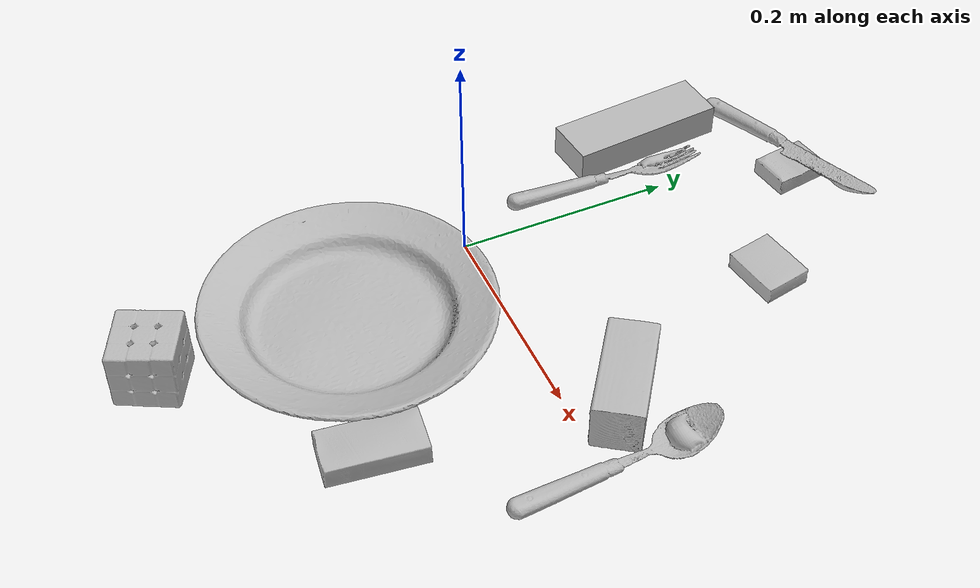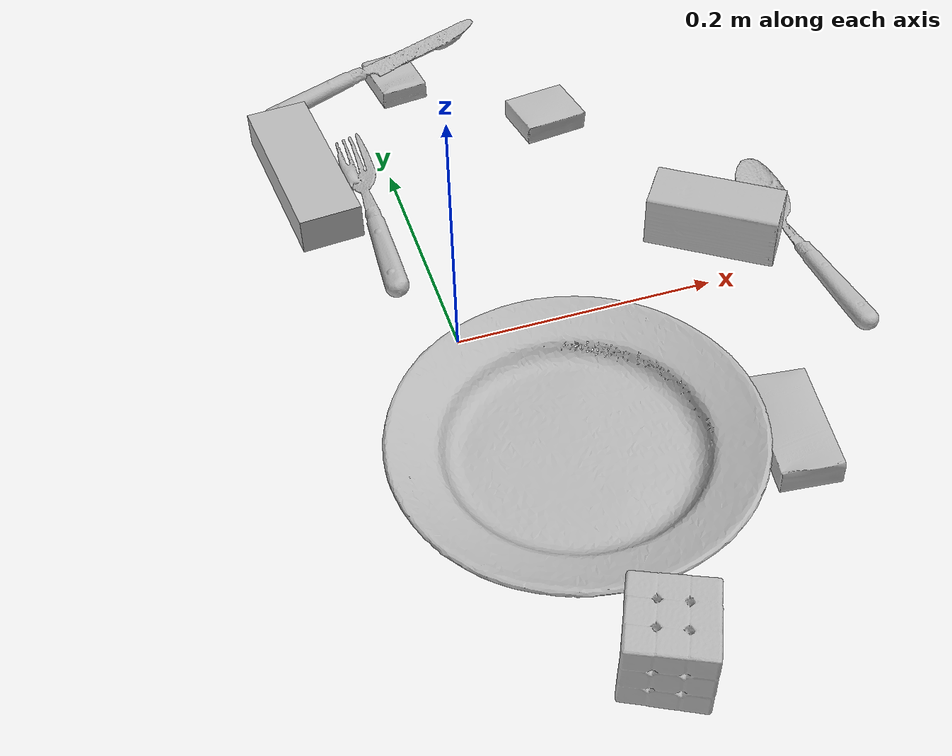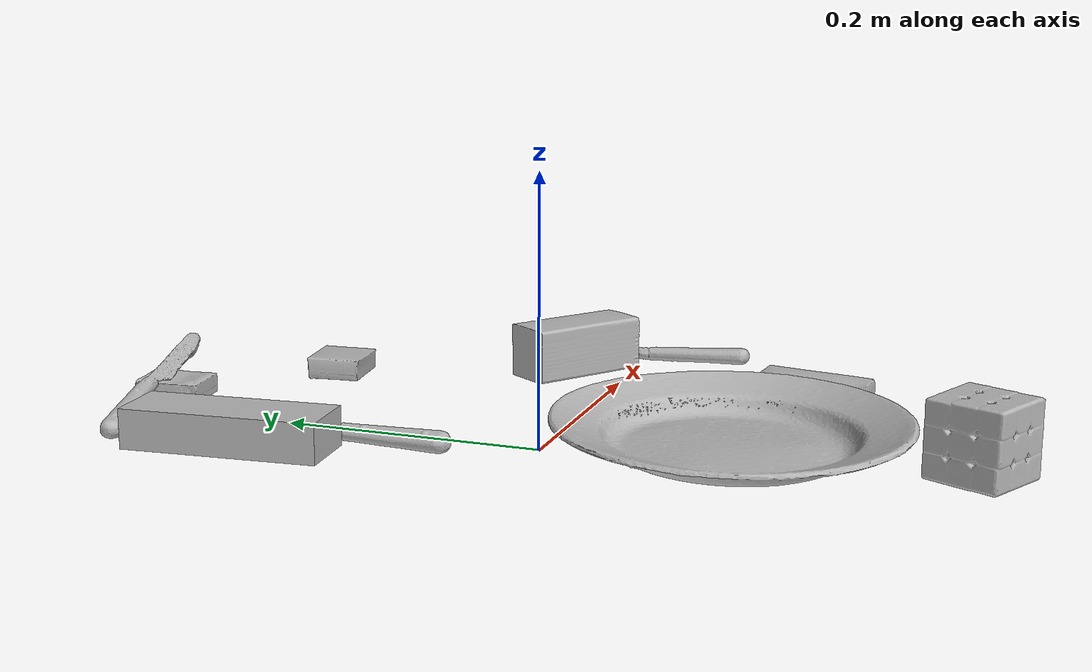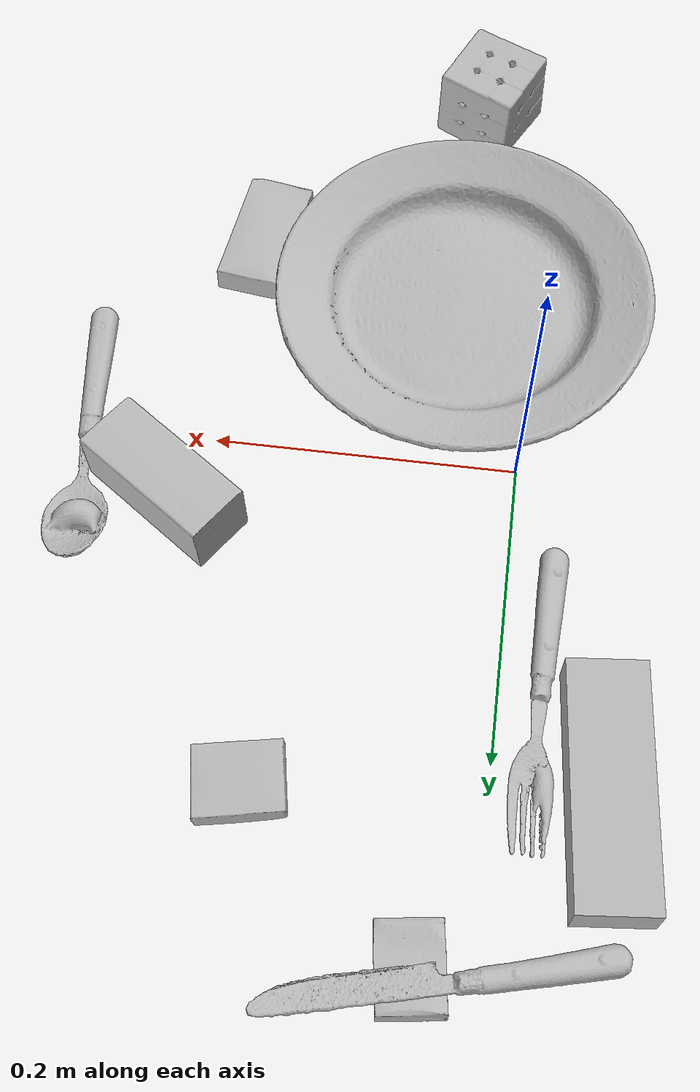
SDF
<sdf version="1.4">
  <world name="default">
    <light name="light1" type="point">
      <pose>0 0 1 0 0 0</pose>
      <diffuse>3 3 3 1</diffuse>
      <specular>3 3 3 1</specular>
    </light>
    <light name="light2" type="point">
      <pose>0 0.5 2 0 0 0</pose>
      <diffuse>1 1 1 1</diffuse>
      <specular>1 1 1 1</specular>
    </light>
    <light name="light3" type="point">
      <pose>0 0.5 2 0 0 0</pose>
      <diffuse>3 3 3 1</diffuse>
      <specular>3 3 3 1</specular>
    </light>
    <scene>
      <ambient>0.7 0.7 0.7</ambient>
    </scene>
    <model name="box11">
      <link name="link_box11">
        <collision name="default">
          <geometry>
            <mesh>
              <uri>model://rubiks_cube/collision_meshes/collision.obj</uri>
              <scale>1.0 1.0 1.0</scale>
            </mesh>
          </geometry>
          <surface>
            <friction>
              <ode>
                <mu>0.5</mu>
                <mu2>0.5</mu2>
              </ode>
            </friction>
          <contact>
        <ode>
            <max_vel>0</max_vel>
            <min_depth>0.0001</min_depth>
            <kp>1e8</kp>
        </ode>
    </contact></surface>
        </collision>
        <visual name="default">
          <geometry>
            <mesh>
              <uri>model://rubiks_cube/visual_meshes/visual.dae</uri>
              <scale>1.0 1.0 1.0</scale>
            </mesh>
          </geometry>
        </visual>
        <inertial>
          <mass>0.14537504315376282</mass>
          <pose>2.6721039830590598e-05 5.2569666877388954e-05 -7.264316082000732e-06 -0.05467316775404926 -0.09814130205097539 -0.03445549690793288</pose>
          <inertia>
            <ixx>8.032947e-05</ixx>
            <iyy>7.9954865e-05</iyy>
            <izz>8.099513e-05</izz>
            <ixy>0</ixy>
            <ixz>0</ixz>
            <iyz>0</iyz>
          </inertia>
        </inertial>
      </link>
      <pose>0.04212591424584389 -0.2996424436569214 0.02867894247174263 -5.049545895816596e-06 -1.8596165778782438e-06 -2.0146702394182827</pose>
    </model>
    <model name="box12">
      <link name="link_box12">
        <collision name="default">
          <geometry>
            <mesh>
              <uri>model://cracker_box/collision_meshes/collision.obj</uri>
              <scale>0.25 0.25 0.25</scale>
            </mesh>
          </geometry>
          <surface>
            <friction>
              <ode>
                <mu>0.5</mu>
                <mu2>0.5</mu2>
              </ode>
            </friction>
          <contact>
        <ode>
            <max_vel>0</max_vel>
            <min_depth>0.0001</min_depth>
            <kp>1e8</kp>
        </ode>
    </contact></surface>
        </collision>
        <visual name="default">
          <geometry>
            <mesh>
              <uri>model://cracker_box/visual_meshes/visual.dae</uri>
              <scale>0.25 0.25 0.25</scale>
            </mesh>
          </geometry>
        </visual>
        <inertial>
          <mass>0.04629049822688103</mass>
          <pose>0.00023660360602661967 6.358561950037256e-05 -0.00042573834070935845 -0.00031620769195764 -0.01110649332573822 0.0025467952358288496</pose>
          <inertia>
            <ixx>7.358898e-06</ixx>
            <iyy>1.2150985e-05</iyy>
            <izz>1.7340568e-05</izz>
            <ixy>0</ixy>
            <ixz>0</ixz>
            <iyz>0</iyz>
          </inertia>
        </inertial>
      </link>
      <pose>0.03541687875986099 0.32256215810775757 0.00909616332501173 -0.014102950904298623 -0.004998737911592535 1.7030644286786256</pose>
    </model>
    <model name="box13">
      <link name="link_box13">
        <collision name="default">
          <geometry>
            <mesh>
              <uri>model://sugar_box/collision_meshes/collision.obj</uri>
              <scale>0.5 0.5 0.5</scale>
            </mesh>
          </geometry>
          <surface>
            <friction>
              <ode>
                <mu>0.5</mu>
                <mu2>0.5</mu2>
              </ode>
            </friction>
          <contact>
        <ode>
            <max_vel>0</max_vel>
            <min_depth>0.0001</min_depth>
            <kp>1e8</kp>
        </ode>
    </contact></surface>
        </collision>
        <visual name="default">
          <geometry>
            <mesh>
              <uri>model://sugar_box/visual_meshes/visual.dae</uri>
              <scale>0.5 0.5 0.5</scale>
            </mesh>
          </geometry>
        </visual>
        <inertial>
          <mass>0.06844717264175415</mass>
          <pose>0.0005171863595023751 1.924554817378521e-05 -0.00018182402709499002 -0.0004046259509043031 0.0010506635218006705 0.0026153792547683827</pose>
          <inertia>
            <ixx>1.4257497e-05</ixx>
            <iyy>4.608316e-05</iyy>
            <izz>5.5167053e-05</izz>
            <ixy>0</ixy>
            <ixz>0</ixz>
            <iyz>0</iyz>
          </inertia>
        </inertial>
      </link>
      <pose>0.19067634642124176 -0.162188321352005 0.011447022669017315 -0.024294530712152297 -0.012826629235427347 1.4313835694022599</pose>
    </model>
    <model name="box21">
      <link name="link_box21">
        <collision name="default">
          <geometry>
            <mesh>
              <uri>model://wood_block/collision_meshes/collision.obj</uri>
              <scale>0.5 0.5 0.5</scale>
            </mesh>
          </geometry>
          <surface>
            <friction>
              <ode>
                <mu>0.5</mu>
                <mu2>0.5</mu2>
              </ode>
            </friction>
          <contact>
        <ode>
            <max_vel>0</max_vel>
            <min_depth>0.0001</min_depth>
            <kp>1e8</kp>
        </ode>
    </contact></surface>
        </collision>
        <visual name="default">
          <geometry>
            <mesh>
              <uri>model://wood_block/visual_meshes/visual.dae</uri>
              <scale>0.5 0.5 0.5</scale>
            </mesh>
          </geometry>
        </visual>
        <inertial>
          <mass>0.22006426751613617</mass>
          <pose>-2.9066577553749084e-06 -0.00028540476341731846 0.00013204292918089777 -0.05220890442695651 -0.005192696130650637 -0.006861379915905358</pose>
          <inertia>
            <ixx>7.361981e-05</ixx>
            <iyy>0.00023256506</iyy>
            <izz>0.00023169514</izz>
            <ixy>0</ixy>
            <ixz>0</ixz>
            <iyz>0</iyz>
          </inertia>
        </inertial>
      </link>
      <pose>0.22381404042243958 0.045928288251161575 0.022629257291555405 -0.005208373858328097 0.0057187644606505675 -0.610188537881902</pose>
    </model>
    <model name="box22">
      <link name="link_box22">
        <collision name="default">
          <geometry>
            <mesh>
              <uri>model://jenga/collision_meshes/collision.obj</uri>
              <scale>1.0 1.0 1.0</scale>
            </mesh>
          </geometry>
          <surface>
            <friction>
              <ode>
                <mu>0.5</mu>
                <mu2>0.5</mu2>
              </ode>
            </friction>
          <contact>
        <ode>
            <max_vel>0</max_vel>
            <min_depth>0.0001</min_depth>
            <kp>1e8</kp>
        </ode>
    </contact></surface>
        </collision>
        <visual name="default">
          <geometry>
            <mesh>
              <uri>model://jenga/visual_meshes/visual.dae</uri>
              <scale>1.0 1.0 1.0</scale>
            </mesh>
          </geometry>
        </visual>
        <inertial>
          <mass>0.1883949637413025</mass>
          <pose>-2.502855807051674e-07 -0.00010250010382151231 -4.0923405322246253e-05 0.0 -7.342154049184251e-07 0.0</pose>
          <inertia>
            <ixx>5.213346e-05</ixx>
            <iyy>0.0003532549</iyy>
            <izz>0.00037712968</izz>
            <ixy>0</ixy>
            <ixz>0</ixz>
            <iyz>0</iyz>
          </inertia>
        </inertial>
      </link>
      <pose>-0.06887207925319672 0.21025435626506805 0.014999998733401299 1.972911798088114e-09 -6.159267356271311e-09 1.6607572805230042</pose>
    </model>
    <model name="box23">
      <link name="link_box23">
        <collision name="default">
          <geometry>
            <mesh>
              <uri>model://pudding_box/collision_meshes/collision.obj</uri>
              <scale>0.5 0.5 0.5</scale>
            </mesh>
          </geometry>
          <surface>
            <friction>
              <ode>
                <mu>0.5</mu>
                <mu2>0.5</mu2>
              </ode>
            </friction>
          <contact>
        <ode>
            <max_vel>0</max_vel>
            <min_depth>0.0001</min_depth>
            <kp>1e8</kp>
        </ode>
    </contact></surface>
        </collision>
        <visual name="default">
          <geometry>
            <mesh>
              <uri>model://pudding_box/visual_meshes/visual.dae</uri>
              <scale>0.5 0.5 0.5</scale>
            </mesh>
          </geometry>
        </visual>
        <inertial>
          <mass>0.030779412016272545</mass>
          <pose>0.00024474109522998333 0.0004033942532259971 -0.0002594413817860186 0.0052131022413302 -0.00660379919873188 0.020079828882866795</pose>
          <inertia>
            <ixx>8.6986365e-06</ixx>
            <iyy>5.8525034e-06</iyy>
            <izz>1.2845808e-05</izz>
            <ixy>0</ixy>
            <ixz>0</ixz>
            <iyz>0</iyz>
          </inertia>
        </inertial>
      </link>
      <pose>0.1462407410144806 0.23023714125156403 0.009862898848950863 0.02234851774270514 -0.01139173783902322 1.7484917197250749</pose>
    </model>
    <model name="plate1">
      <link name="link_plate1">
        <collision name="default">
          <geometry>
            <mesh>
              <uri>model://plate/collision_meshes/collision.obj</uri>
              <scale>1.0 1.0 1.0</scale>
            </mesh>
          </geometry>
          <surface>
            <friction>
              <ode>
                <mu>0.5</mu>
                <mu2>0.5</mu2>
              </ode>
            </friction>
          <contact>
        <ode>
            <max_vel>0</max_vel>
            <min_depth>0.0001</min_depth>
            <kp>1e8</kp>
        </ode>
    </contact></surface>
        </collision>
        <visual name="default">
          <geometry>
            <mesh>
              <uri>model://plate/visual_meshes/visual.dae</uri>
              <scale>1.0 1.0 1.0</scale>
            </mesh>
          </geometry>
        </visual>
        <inertial>
          <mass>0.2551877498626709</mass>
          <pose>-0.0006044633337296546 0.0002782584633678198 -0.0010561984963715076 0.002218758596895186 -0.003225500510611216 0.45261892370472845</pose>
          <inertia>
            <ixx>0.0011937734</ixx>
            <iyy>0.0011823553</iyy>
            <izz>0.002334842</izz>
            <ixy>0</ixy>
            <ixz>0</ixz>
            <iyz>0</iyz>
          </inertia>
        </inertial>
      </link>
      <pose>0.04631643742322922 -0.127643421292305 0.013731926679611206 1.6290291298993545e-06 5.696440274852873e-05 -0.9817873917153557</pose>
    </model>
    <model name="silverware1">
      <link name="link_silverware1">
        <collision name="default">
          <geometry>
            <mesh>
              <uri>model://knife/collision_meshes/collision.obj</uri>
              <scale>1.0 1.0 1.0</scale>
            </mesh>
          </geometry>
          <surface>
            <friction>
              <ode>
                <mu>0.5</mu>
                <mu2>0.5</mu2>
              </ode>
            </friction>
          <contact>
        <ode>
            <max_vel>0</max_vel>
            <min_depth>0.0001</min_depth>
            <kp>1e8</kp>
        </ode>
    </contact></surface>
        </collision>
        <visual name="default">
          <geometry>
            <mesh>
              <uri>model://knife/visual_meshes/visual.dae</uri>
              <scale>1.0 1.0 1.0</scale>
            </mesh>
          </geometry>
        </visual>
        <inertial>
          <mass>0.030903667211532593</mass>
          <pose>-0.023785250261425972 0.0015275125624611974 5.062023410573602e-05 0.07305665398911224 0.017248417197799442 -0.0074098217442817044</pose>
          <inertia>
            <ixx>8.7717143e-07</ixx>
            <iyy>0.00011872688</iyy>
            <izz>0.000119009375</izz>
            <ixy>0</ixy>
            <ixz>0</ixz>
            <iyz>0</iyz>
          </inertia>
        </inertial>
      </link>
      <pose>0.017106041312217712 0.32776692509651184 0.017952611669898033 0.05190995417246788 -0.11679739647169969 0.2542169652358504</pose>
    </model>
    <model name="silverware2">
      <link name="link_silverware2">
        <collision name="default">
          <geometry>
            <mesh>
              <uri>model://spoon/collision_meshes/collision.obj</uri>
              <scale>1.0 1.0 1.0</scale>
            </mesh>
          </geometry>
          <surface>
            <friction>
              <ode>
                <mu>0.5</mu>
                <mu2>0.5</mu2>
              </ode>
            </friction>
          <contact>
        <ode>
            <max_vel>0</max_vel>
            <min_depth>0.0001</min_depth>
            <kp>1e8</kp>
        </ode>
    </contact></surface>
        </collision>
        <visual name="default">
          <geometry>
            <mesh>
              <uri>model://spoon/visual_meshes/visual.dae</uri>
              <scale>1.0 1.0 1.0</scale>
            </mesh>
          </geometry>
        </visual>
        <inertial>
          <mass>0.020994963124394417</mass>
          <pose>-0.005526323337107897 -0.00160341733135283 -0.0007271658978424966 0.035216710718480135 -0.03906584501417282 0.00615060951780049</pose>
          <inertia>
            <ixx>1.1677738e-06</ixx>
            <iyy>7.988513e-05</iyy>
            <izz>8.046103e-05</izz>
            <ixy>0</ixy>
            <ixz>0</ixz>
            <iyz>0</iyz>
          </inertia>
        </inertial>
      </link>
      <pose>0.2821096181869507 0.00862671248614788 0.00838526338338852 0.00673182203990761 0.02689298900279138 1.6466367404564908</pose>
    </model>
    <model name="silverware3">
      <link name="link_silverware3">
        <collision name="default">
          <geometry>
            <mesh>
              <uri>model://fork/collision_meshes/collision.obj</uri>
              <scale>1.0 1.0 1.0</scale>
            </mesh>
          </geometry>
          <surface>
            <friction>
              <ode>
                <mu>0.5</mu>
                <mu2>0.5</mu2>
              </ode>
            </friction>
          <contact>
        <ode>
            <max_vel>0</max_vel>
            <min_depth>0.0001</min_depth>
            <kp>1e8</kp>
        </ode>
    </contact></surface>
        </collision>
        <visual name="default">
          <geometry>
            <mesh>
              <uri>model://fork/visual_meshes/visual.dae</uri>
              <scale>1.0 1.0 1.0</scale>
            </mesh>
          </geometry>
        </visual>
        <inertial>
          <mass>0.012144052423536777</mass>
          <pose>-0.029570043087005615 0.0004658822144847363 0.0003218860656488687 -0.013551171335247731 -0.01097783699854739 0.014453902564514984</pose>
          <inertia>
            <ixx>4.257177e-07</ixx>
            <iyy>3.170462e-05</iyy>
            <izz>3.1895037e-05</izz>
            <ixy>0</ixy>
            <ixz>0</ixz>
            <iyz>0</iyz>
          </inertia>
        </inertial>
      </link>
      <pose>-0.02555841952562332 0.15479424595832825 0.005690816789865494 -0.17535852481834066 0.025779378747092883 1.5345886284749033</pose>
    </model>
  <physics type="ode">
      <max_contacts>50</max_contacts>
      <ode>
        <solver>
          <type>quick</type>
          <iters>75</iters>
        </solver>
        <constraints>
          <contact_max_correcting_vel>0</contact_max_correcting_vel>
          <contact_surface_layer>0</contact_surface_layer>
        </constraints>
      </ode>
    </physics></world>
</sdf>
